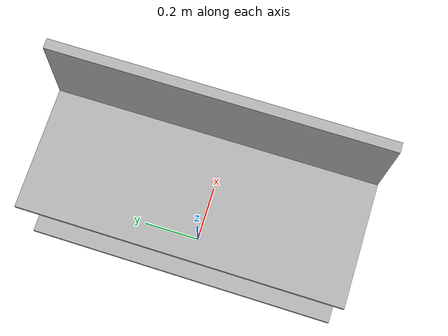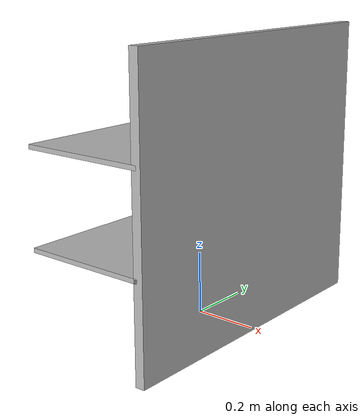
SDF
<?xml version="1.0"?>
<sdf version="1.7">
  <model name="old_shelves">
    <link name="base">
      <inertial>
        <mass>1</mass>
        <inertia>
          <ixx>1</ixx>
          <ixy>0</ixy>
          <ixz>0</ixz>
          <iyy>1</iyy>
          <iyz>0</iyz>
          <izz>1</izz>
        </inertia>
      </inertial>

      <visual name="shelf_1_visual">
        <pose>0 0 0.3 0 0 0</pose>
        <geometry>
          <box>
            <size>0.4 1.0 0.014</size>
          </box>
        </geometry>
      </visual>
      <visual name="shelf_2_visual">
        <pose>0 0 0.6 0 0 0</pose>
        <geometry>
          <box>
            <size>0.4 1.0 0.014</size>
          </box>
        </geometry>
      </visual>
      <visual name="back_visual">
        <pose>0.2 0 0.45 0 0 0</pose>
        <geometry>
          <box>
            <size>0.03 1.0 0.9</size>
          </box>
        </geometry>
      </visual>

      <collision name="shelf_1_collision">
        <pose>0 0 0.3 0 0 0</pose>
        <geometry>
          <box>
            <size>0.4 1.0 0.014</size>
          </box>
        </geometry>
      </collision>
      <collision name="shelf_2_collision">
        <pose>0 0 0.6 0 0 0</pose>
        <geometry>
          <box>
            <size>0.4 1.0 0.014</size>
          </box>
        </geometry>
      </collision>
      <collision name="back_collision">
        <pose>0.2 0 0.45 0 0 0</pose>
        <geometry>
          <box>
            <size>0.03 1.0 0.9</size>
          </box>
        </geometry>
      </collision>
    </link>
  </model>
</sdf>
